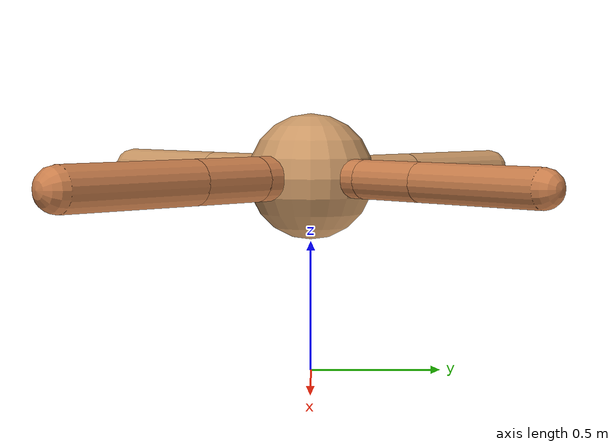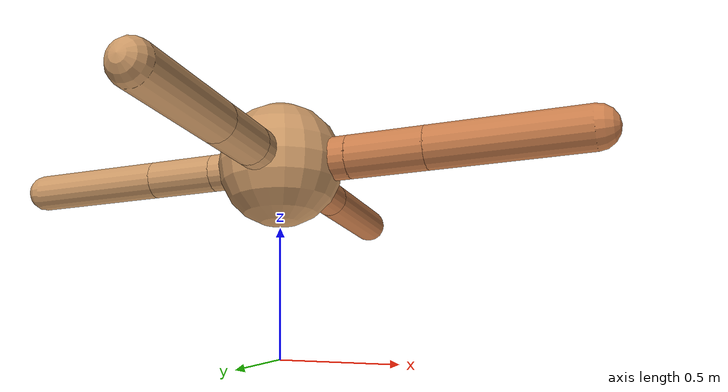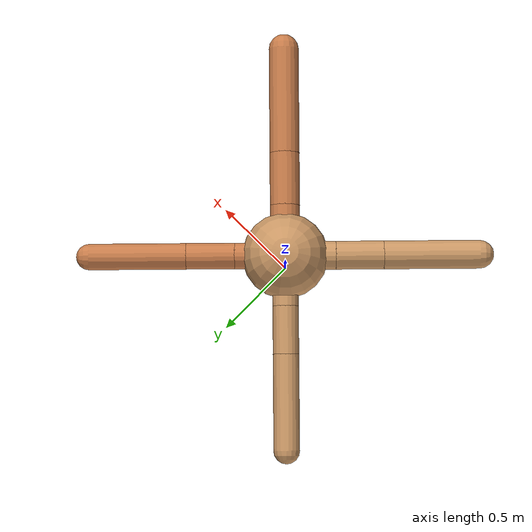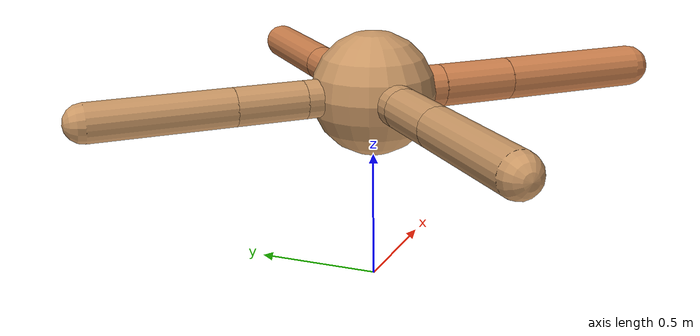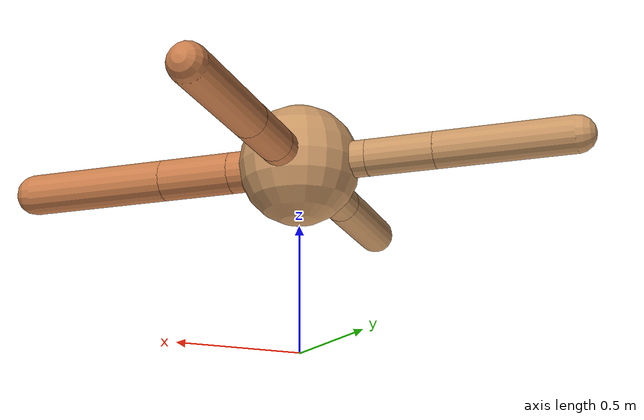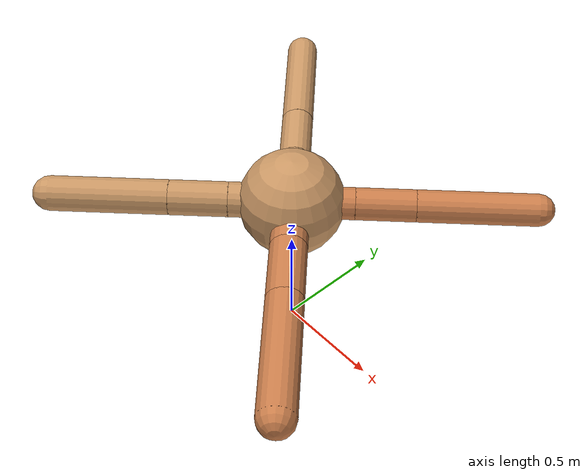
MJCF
<?xml version="1.0" ?>
<mujoco model="ant">

	<compiler angle="degree" coordinate="local" inertiafromgeom="true"/>

	<option integrator="RK4" timestep="0.01"/>

	<custom>

		<numeric data="0.0 0.0 0.55 1.0 0.0 0.0 0.0 0.0 1.0 0.0 -1.0 0.0 -1.0 0.0 1.0" name="init_qpos"/>

	</custom>

	<default>

		<joint armature="1" damping="1" limited="true"/>

		<geom conaffinity="0" condim="3" density="5.0" friction="1.5 0.1 0.1" margin="0.01" rgba="0.8 0.6 0.4 1"/>

	</default>

	<worldbody>

		<body name="torso" pos="0 0 0.75">

			<geom name="torso_geom" pos="0 0 0" size="0.24074951345599485" type="sphere"/>

			<!--joint armature="0" damping="0" limited="false" margin="0.01" name="root" pos="0 0 0" type="free"/-->

			<body name="front_left_leg" pos="0 0 0">

				<geom fromto="0 0 0 0.2 0.2 0" name="aux_1_geom" size="0.0729490344847905" type="capsule" rgba=".8 .5 .3 1"/>

				<body name="aux_1" pos="0.2 0.2 0">

					<joint axis="0 0 1" name="hip_1" pos="0.0 0.0 0.0" range="-40 40" type="hinge"/>

					<geom fromto="0 0 0 0.19160614499547987 0.19160614499547987 0" name="left_leg_geom" size="0.0729490344847905" type="capsule" rgba=".8 .5 .3 1"/>

					<body pos="0.19160614499547987 0.19160614499547987 0" name="front_left_foot">

						<joint axis="-1 1 0" name="ankle_1" pos="0.0 0.0 0.0" range="30 100" type="hinge"/>

						<geom fromto="0 0 0 0.38321228999095974 0.38321228999095974 0" name="left_ankle_geom" size="0.0729490344847905" type="capsule" rgba=".8 .5 .3 1"/>

					</body>

				</body>

			</body>

			<body name="front_right_leg" pos="0 0 0">

				<geom fromto="0 0 0 -0.2 0.2 0" name="aux_2_geom" size="0.07321995130145695" type="capsule"/>

				<body name="aux_2" pos="-0.2 0.2 0">

					<joint axis="0 0 1" name="hip_2" pos="0.0 0.0 0.0" range="-40 40" type="hinge"/>

					<geom fromto="0 0 0 -0.18932098953501048 0.18932098953501048 0" name="right_leg_geom" size="0.07321995130145695" type="capsule"/>

					<body pos="-0.18932098953501048 0.18932098953501048 0" name="front_right_foot">

						<joint axis="1 1 0" name="ankle_2" pos="0.0 0.0 0.0" range="-100 -30" type="hinge"/>

						<geom fromto="0 0 0 -0.37864197907002095 0.37864197907002095 0" name="right_ankle_geom" size="0.07321995130145695" type="capsule"/>

					</body>

				</body>

			</body>

			<body name="left_back_leg" pos="0 0 0">

				<geom fromto="0 0 0 -0.2 -0.2 0" name="aux_3_geom" size="0.07944084922132409" type="capsule"/>

				<body name="aux_3" pos="-0.2 -0.2 0">

					<joint axis="0 0 1" name="hip_3" pos="0.0 0.0 0.0" range="-40 40" type="hinge"/>

					<geom fromto="0 0 0 -0.1897200464180695 -0.1897200464180695 0" name="back_leg_geom" size="0.07944084922132409" type="capsule"/>

					<body pos="-0.1897200464180695 -0.1897200464180695 0" name="left_back_foot">

						<joint axis="-1 1 0" name="ankle_3" pos="0.0 0.0 0.0" range="-100 -30" type="hinge"/>

						<geom fromto="0 0 0 -0.379440092836139 -0.379440092836139 0" name="third_ankle_geom" size="0.07944084922132409" type="capsule"/>

					</body>

				</body>

			</body>

			<body name="right_back_leg" pos="0 0 0">

				<geom fromto="0 0 0 0.2 -0.2 0" name="aux_4_geom" size="0.0842803672862788" type="capsule" rgba=".8 .5 .3 1"/>

				<body name="aux_4" pos="0.2 -0.2 0">

					<joint axis="0 0 1" name="hip_4" pos="0.0 0.0 0.0" range="-40 40" type="hinge"/>

					<geom fromto="0 0 0 0.2101160457937779 -0.2101160457937779 0" name="rightback_leg_geom" size="0.0842803672862788" type="capsule" rgba=".8 .5 .3 1"/>

					<body pos="0.2101160457937779 -0.2101160457937779 0" name="right_back_foot">

						<joint axis="1 1 0" name="ankle_4" pos="0.0 0.0 0.0" range="30 100" type="hinge"/>

						<geom fromto="0 0 0 0.4202320915875558 -0.4202320915875558 0" name="fourth_ankle_geom" size="0.0842803672862788" type="capsule" rgba=".8 .5 .3 1"/>

					</body>

				</body>

			</body>

		</body>

	</worldbody>

	<actuator>

		<motor ctrllimited="true" ctrlrange="-1.0 1.0" joint="hip_4" gear="150"/>

		<motor ctrllimited="true" ctrlrange="-1.0 1.0" joint="ankle_4" gear="150"/>

		<motor ctrllimited="true" ctrlrange="-1.0 1.0" joint="hip_1" gear="150"/>

		<motor ctrllimited="true" ctrlrange="-1.0 1.0" joint="ankle_1" gear="150"/>

		<motor ctrllimited="true" ctrlrange="-1.0 1.0" joint="hip_2" gear="150"/>

		<motor ctrllimited="true" ctrlrange="-1.0 1.0" joint="ankle_2" gear="150"/>

		<motor ctrllimited="true" ctrlrange="-1.0 1.0" joint="hip_3" gear="150"/>

		<motor ctrllimited="true" ctrlrange="-1.0 1.0" joint="ankle_3" gear="150"/>

	</actuator>

</mujoco>
